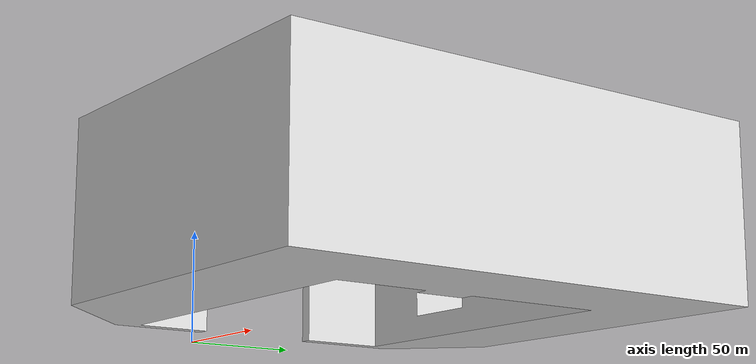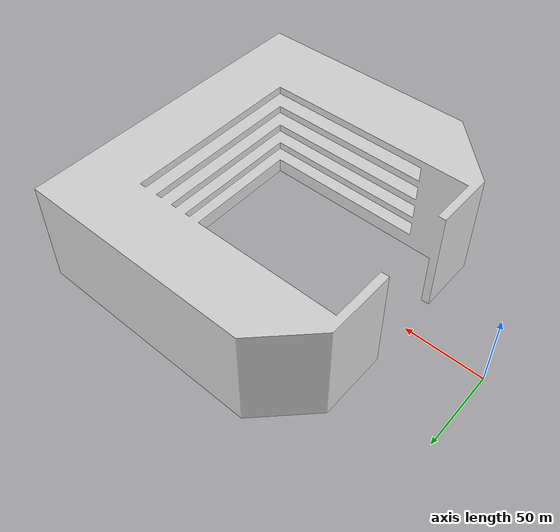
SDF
<?xml version="1.0"?>
<sdf version="1.5">
  <model name="parking_tower">
    <!-- Make the ramp static so it doesn't move upon collisions -->
    <static>true</static>

    <link name="parking_tower">
      <!-- Optional: Set the initial pose of the ramp -->
      <pose>141 0 32 0 0 -1.570796</pose>

      <!-- Inertial properties are required even for static models -->
      <inertial>
        <mass>1.0</mass>
        <inertia>
          <ixx>1.0</ixx>
          <ixy>0.0</ixy>
          <ixz>0.0</ixz>
          <iyy>1.0</iyy>
          <iyz>0.0</iyz>
          <izz>1.0</izz>
        </inertia>
      </inertial>

      <!-- Collision element using the ramp mesh with scaling -->
      <collision name="collision">
        <geometry>
          <mesh>
            <uri>model://parking_tower/meshes/parking_tower.dae</uri>
            <scale>10.0 10.0 10.0</scale> <!-- Scale down by 50% -->
          </mesh>
        </geometry>
        <surface>
          <contact>
            <collide_bitmask>1</collide_bitmask>
          </contact>
          <friction>
            <ode>
              <mu>1.0</mu> <!-- Friction coefficient -->
              <mu2>1.0</mu2>
            </ode>
          </friction>
          <bounce>
            <restitution_coefficient>0.0</restitution_coefficient>
          </bounce>
        </surface>
      </collision>

      <!-- Visual element using the ramp mesh with scaling and white material -->
      <visual name="visual">
        <geometry>
          <mesh>
            <uri>model://parking_tower/meshes/parking_tower.dae</uri>
            <scale>10.0 10.0 10.0</scale>
          </mesh>
        </geometry>
        <material>
          <script>
            <uri>model://parking_tower/materials/scripts</uri>
            <uri>model://parking_tower/materials/textures</uri>
            <name>Table/Marble_Lightmap</name>
          </script>
          <lighting>true</lighting>
        </material>
      </visual>
    </link>
  </model>
</sdf>
